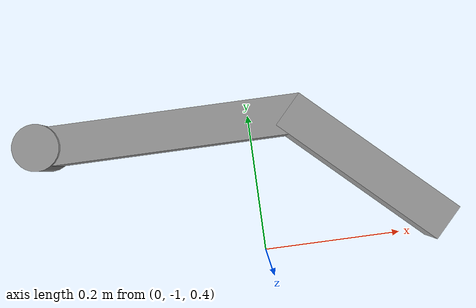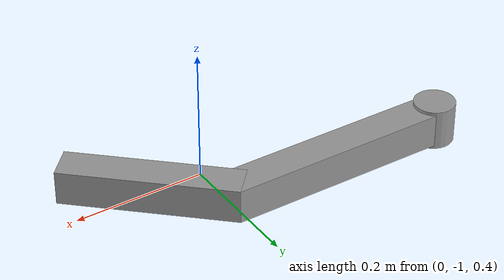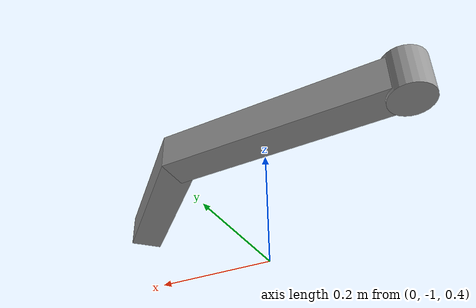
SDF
<?xml version='1.0'?>
<sdf version='1.7'>
  <model name='gripper_arm_left'>
    <link name='tankbot_gripper::link_0'>
      <inertial>
        <mass>1</mass>
        <inertia>
          <ixx>0.166667</ixx>
          <ixy>0</ixy>
          <ixz>0</ixz>
          <iyy>0.166667</iyy>
          <iyz>0</iyz>
          <izz>0.166667</izz>
        </inertia>
        <pose>0 0 0 0 -0 0</pose>
      </inertial>
      <pose>-0.110703 -0.81528 0.500002 -4e-06 -8e-06 -0.000587</pose>
      <gravity>1</gravity>
      <self_collide>0</self_collide>
      <kinematic>0</kinematic>
      <enable_wind>0</enable_wind>
      <visual name='visual'>
        <pose>0 0 0 0 -0 0</pose>
        <geometry>
          <box>
            <size>0.35 0.05 0.05</size>
          </box>
        </geometry>
        <material>
          <lighting>1</lighting>
          <script>
            <uri>file://media/materials/scripts/gazebo.material</uri>
            <name>Gazebo/Grey</name>
          </script>
          <shader type='pixel'>
            <normal_map>__default__</normal_map>
          </shader>
          <ambient>0.3 0.3 0.3 1</ambient>
          <diffuse>0.7 0.7 0.7 1</diffuse>
          <specular>0.01 0.01 0.01 1</specular>
          <emissive>0 0 0 1</emissive>
        </material>
        <transparency>0</transparency>
        <cast_shadows>1</cast_shadows>
      </visual>
      <collision name='collision'>
        <laser_retro>0</laser_retro>
        <max_contacts>10</max_contacts>
        <pose>0 0 0 0 -0 0</pose>
        <geometry>
          <box>
            <size>0.35 0.05 0.05</size>
          </box>
        </geometry>
        <surface>
          <friction>
            <ode>
              <mu>1</mu>
              <mu2>1</mu2>
              <fdir1>0 0 0</fdir1>
              <slip1>0</slip1>
              <slip2>0</slip2>
            </ode>
            <torsional>
              <coefficient>1</coefficient>
              <patch_radius>0</patch_radius>
              <surface_radius>0</surface_radius>
              <use_patch_radius>1</use_patch_radius>
              <ode>
                <slip>0</slip>
              </ode>
            </torsional>
          </friction>
          <bounce>
            <restitution_coefficient>0</restitution_coefficient>
            <threshold>1e+06</threshold>
          </bounce>
          <contact>
            <collide_without_contact>0</collide_without_contact>
            <collide_without_contact_bitmask>1</collide_without_contact_bitmask>
            <collide_bitmask>1</collide_bitmask>
            <ode>
              <soft_cfm>0</soft_cfm>
              <soft_erp>0.2</soft_erp>
              <kp>1e+13</kp>
              <kd>1</kd>
              <max_vel>0.01</max_vel>
              <min_depth>0</min_depth>
            </ode>
            <bullet>
              <split_impulse>1</split_impulse>
              <split_impulse_penetration_threshold>-0.01</split_impulse_penetration_threshold>
              <soft_cfm>0</soft_cfm>
              <soft_erp>0.2</soft_erp>
              <kp>1e+13</kp>
              <kd>1</kd>
            </bullet>
          </contact>
        </surface>
      </collision>
    </link>
    <link name='tankbot_gripper::link_0_clone'>
      <inertial>
        <mass>1</mass>
        <inertia>
          <ixx>0.166667</ixx>
          <ixy>0</ixy>
          <ixz>0</ixz>
          <iyy>0.166667</iyy>
          <iyz>0</iyz>
          <izz>0.166667</izz>
        </inertia>
        <pose>0 0 0 0 -0 0</pose>
      </inertial>
      <pose>0.1387 -0.8939 0.500004 0 0 -0.75</pose>
      <gravity>1</gravity>
      <self_collide>0</self_collide>
      <kinematic>0</kinematic>
      <enable_wind>0</enable_wind>
      <visual name='visual'>
        <pose>0 0 0 0 -0 0</pose>
        <geometry>
          <box>
            <size>0.25 0.05 0.05</size>
          </box>
        </geometry>
        <material>
          <lighting>1</lighting>
          <script>
            <uri>file://media/materials/scripts/gazebo.material</uri>
            <name>Gazebo/Grey</name>
          </script>
          <shader type='pixel'>
            <normal_map>__default__</normal_map>
          </shader>
          <ambient>0.3 0.3 0.3 1</ambient>
          <diffuse>0.7 0.7 0.7 1</diffuse>
          <specular>0.01 0.01 0.01 1</specular>
          <emissive>0 0 0 1</emissive>
        </material>
        <transparency>0</transparency>
        <cast_shadows>1</cast_shadows>
      </visual>
      <collision name='collision'>
        <laser_retro>0</laser_retro>
        <max_contacts>10</max_contacts>
        <pose>0 0 0 0 -0 0</pose>
        <geometry>
          <box>
            <size>0.25 0.05 0.05</size>
          </box>
        </geometry>
        <surface>
          <friction>
            <ode>
              <mu>1</mu>
              <mu2>1</mu2>
              <fdir1>0 0 0</fdir1>
              <slip1>0</slip1>
              <slip2>0</slip2>
            </ode>
            <torsional>
              <coefficient>1</coefficient>
              <patch_radius>0</patch_radius>
              <surface_radius>0</surface_radius>
              <use_patch_radius>1</use_patch_radius>
              <ode>
                <slip>0</slip>
              </ode>
            </torsional>
          </friction>
          <bounce>
            <restitution_coefficient>0</restitution_coefficient>
            <threshold>1e+06</threshold>
          </bounce>
          <contact>
            <collide_without_contact>0</collide_without_contact>
            <collide_without_contact_bitmask>1</collide_without_contact_bitmask>
            <collide_bitmask>1</collide_bitmask>
            <ode>
              <soft_cfm>0</soft_cfm>
              <soft_erp>0.2</soft_erp>
              <kp>1e+13</kp>
              <kd>1</kd>
              <max_vel>0.01</max_vel>
              <min_depth>0</min_depth>
            </ode>
            <bullet>
              <split_impulse>1</split_impulse>
              <split_impulse_penetration_threshold>-0.01</split_impulse_penetration_threshold>
              <soft_cfm>0</soft_cfm>
              <soft_erp>0.2</soft_erp>
              <kp>1e+13</kp>
              <kd>1</kd>
            </bullet>
          </contact>
        </surface>
      </collision>
    </link>
    <link name='tankbot_gripper::link_1'>
      <inertial>
        <mass>1</mass>
        <inertia>
          <ixx>0.145833</ixx>
          <ixy>0</ixy>
          <ixz>0</ixz>
          <iyy>0.145833</iyy>
          <iyz>0</iyz>
          <izz>0.125</izz>
        </inertia>
        <pose>0 0 0 0 -0 0</pose>
      </inertial>
      <pose>-0.273661 -0.815184 0.500001 -4e-06 -8e-06 -0.000587</pose>
      <gravity>1</gravity>
      <self_collide>0</self_collide>
      <kinematic>0</kinematic>
      <enable_wind>0</enable_wind>
      <visual name='visual'>
        <pose>0 0 0 0 -0 0</pose>
        <geometry>
          <cylinder>
            <radius>0.03</radius>
            <length>0.06</length>
          </cylinder>
        </geometry>
        <material>
          <lighting>1</lighting>
          <script>
            <uri>file://media/materials/scripts/gazebo.material</uri>
            <name>Gazebo/Grey</name>
          </script>
          <shader type='pixel'>
            <normal_map>__default__</normal_map>
          </shader>
          <ambient>0.3 0.3 0.3 1</ambient>
          <diffuse>0.7 0.7 0.7 1</diffuse>
          <specular>0.01 0.01 0.01 1</specular>
          <emissive>0 0 0 1</emissive>
        </material>
        <transparency>0</transparency>
        <cast_shadows>1</cast_shadows>
      </visual>
      <collision name='collision'>
        <laser_retro>0</laser_retro>
        <max_contacts>10</max_contacts>
        <pose>0 0 0 0 -0 0</pose>
        <geometry>
          <cylinder>
            <radius>0.03</radius>
            <length>0.06</length>
          </cylinder>
        </geometry>
        <surface>
          <friction>
            <ode>
              <mu>1</mu>
              <mu2>1</mu2>
              <fdir1>0 0 0</fdir1>
              <slip1>0</slip1>
              <slip2>0</slip2>
            </ode>
            <torsional>
              <coefficient>1</coefficient>
              <patch_radius>0</patch_radius>
              <surface_radius>0</surface_radius>
              <use_patch_radius>1</use_patch_radius>
              <ode>
                <slip>0</slip>
              </ode>
            </torsional>
          </friction>
          <bounce>
            <restitution_coefficient>0</restitution_coefficient>
            <threshold>1e+06</threshold>
          </bounce>
          <contact>
            <collide_without_contact>0</collide_without_contact>
            <collide_without_contact_bitmask>1</collide_without_contact_bitmask>
            <collide_bitmask>1</collide_bitmask>
            <ode>
              <soft_cfm>0</soft_cfm>
              <soft_erp>0.2</soft_erp>
              <kp>1e+13</kp>
              <kd>1</kd>
              <max_vel>0.01</max_vel>
              <min_depth>0</min_depth>
            </ode>
            <bullet>
              <split_impulse>1</split_impulse>
              <split_impulse_penetration_threshold>-0.01</split_impulse_penetration_threshold>
              <soft_cfm>0</soft_cfm>
              <soft_erp>0.2</soft_erp>
              <kp>1e+13</kp>
              <kd>1</kd>
            </bullet>
          </contact>
        </surface>
      </collision>
    </link>
    <joint name='tankbot_gripper::link_0_JOINT_0' type='fixed'>
      <parent>tankbot_gripper::link_0</parent>
      <child>tankbot_gripper::link_0_clone</child>
      <pose>0 0 0 0 -0 0</pose>
      <physics>
        <ode>
          <limit>
            <cfm>0</cfm>
            <erp>0.2</erp>
          </limit>
          <suspension>
            <cfm>0</cfm>
            <erp>0.2</erp>
          </suspension>
        </ode>
      </physics>
    </joint>
    <joint name='tankbot_gripper::link_1_JOINT_1' type='fixed'>
      <parent>tankbot_gripper::link_1</parent>
      <child>tankbot_gripper::link_0</child>
      <pose>0 0 0 0 -0 0</pose>
      <physics>
        <ode>
          <limit>
            <cfm>0</cfm>
            <erp>0.2</erp>
          </limit>
          <suspension>
            <cfm>0</cfm>
            <erp>0.2</erp>
          </suspension>
        </ode>
      </physics>
    </joint>
    <static>0</static>
    <allow_auto_disable>1</allow_auto_disable>
    <plugin name='tankbot_control' filename='libtank_control_plugin.so'/>
  </model>
</sdf>
